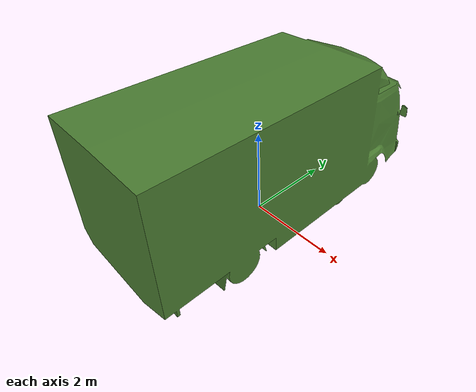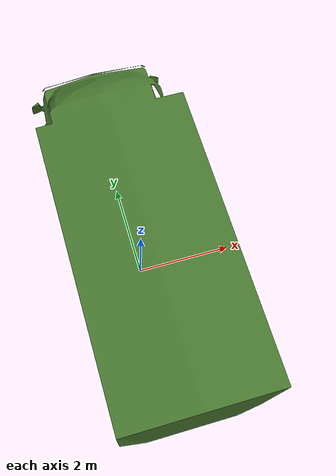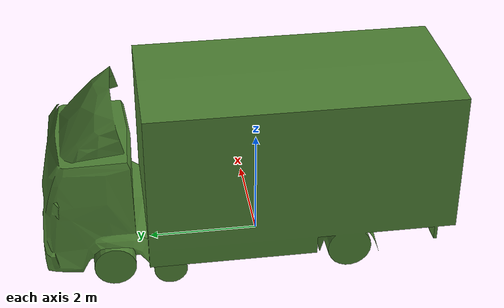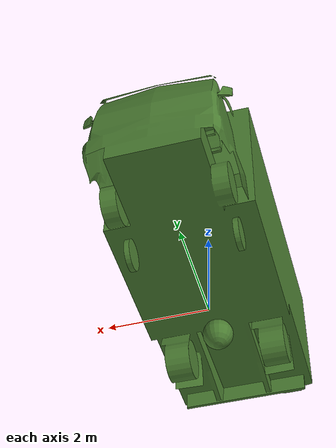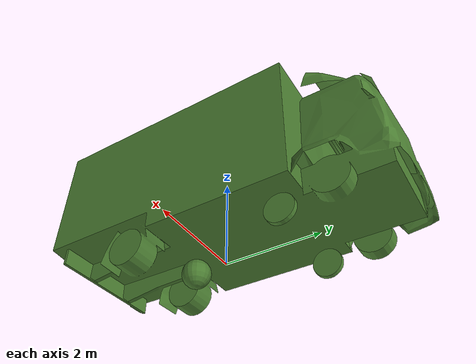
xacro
<?xml version="1.0"?>
<robot name="truck" xmlns:xacro="http://www.ros.org/wiki/xacro">

<xacro:include filename="$(find my_turtlebot_launch)/urdf/include/my_inertial.xacro"/>

  <xacro:property name="PI" value="3.14"/>

  <link name="base_footprint">
    <visual>
      <geometry>
        <sphere radius="0.01"/>
      </geometry>
    </visual>
  </link>

  <link name="base_link" >
    <visual>
    <geometry>
      <mesh filename="package://my_turtlebot_launch/urdf/mesh/truck.stl"/>
    </geometry>
    <origin xyz="-1.4 -3.5 0.1" rpy="${PI/2} 0 ${PI/2}"/>
      <material name="car_color">
        <color rgba="0.3 0.5 0.2 1"/>
      </material>
    </visual>
    <collision>
    <geometry>
      <mesh filename="package://my_turtlebot_launch/urdf/mesh/truck.stl"/>
    </geometry>
    <origin xyz="-1.4 -3.5 0.1" rpy="${PI/2} 0 ${PI/2}"/>
    </collision>
    <inertial>
      <mass value="10"/>
      <inertia ixx="1" ixy="0.0" ixz="0.0" iyy="1" iyz="0.0" izz="1" />
    </inertial>
  </link>

  <link name="left_wheel" >
    <visual>
    <geometry>
      <cylinder length="0.1" radius="0.3"/>
    </geometry>
    <origin xyz="0 0 0" rpy="${PI/2} ${PI/2} 0"/>
      <material name="car_color">
        <color rgba="0.3 0.5 0.2 0"/>
      </material>
    </visual>
    <xacro:cylinder_inertial_matrix m="20" r="0.3" h="0.1" />
    <collision>
    <geometry>
      <cylinder length="0.1" radius="0.3"/>
    </geometry>
    <origin xyz="0 0 0" rpy="${PI/2} ${PI/2} 0"/>
    </collision>
  </link>

    <link name="right_wheel" >
    <visual>
    <geometry>
      <cylinder length="0.1" radius="0.3"/>
    </geometry>
    <origin xyz="0 0 0" rpy="${PI/2} ${PI/2} 0"/>
      <material name="car_color">
        <color rgba="0.3 0.5 0.2 0"/>
      </material>
    </visual>
    <xacro:cylinder_inertial_matrix m="20" r="0.3" h="0." />
    <collision>
    <geometry>
      <cylinder length="0.1" radius="0.3"/>
    </geometry>
    <origin xyz="0 0 0" rpy="${PI/2} ${PI/2} 0"/>
    </collision>
  </link>

    <link name="support_wheel" >
    <visual>
    <geometry>
      <sphere radius="0.3" />
    </geometry>
    <origin xyz="0 0 0" rpy="0 0 0"/>
      <material name="car_color">
        <color rgba="0.3 0.5 0.2 0"/>
      </material>
    </visual>
    <xacro:sphere_inertial_matrix m="10" r="0.2" />
    <collision>
      <geometry>
        <sphere radius="0.3" />
      </geometry>
      <origin xyz="0 0 0" rpy="0 0 0"/>
    </collision>
  </link>

  <joint name="footprint2_base" type="fixed">
      <parent link="base_footprint"/>
      <child link="base_link"/>
      <origin xyz="0 0 -0.25" rpy="0 0 0"/>
  </joint>

  <joint name="link2_lwheel" type="continuous">
    <parent link="base_footprint"/>
    <child link="left_wheel"/>
    <origin xyz="-1.0 1.7 0" rpy="0 0 ${PI/2}"/>
    <axis xyz="0 1 0"/>
  </joint>

  <joint name="link2_rwheel" type="continuous">
    <parent link="base_footprint"/>
    <child link="right_wheel"/>
    <origin xyz="1.0 1.7 0" rpy="0 0 ${PI/2}"/>
    <axis xyz="0 1 0"/>
  </joint>

  <joint name="link2_swheel" type="continuous">
    <parent link="base_footprint"/>
    <child link="support_wheel"/>
    <origin xyz=" 0 -0.7 0" rpy="0 0 0"/>
    <axis xyz="1 1 1"/>
  </joint>

  <gazebo reference="base_link">
      <material>Gazebo/White</material>
  </gazebo>
    <gazebo reference="left_wheel">
      <material>Gazebo/White</material>
      <mu1>10</mu1>
      <mu2>10</mu2>
      <kp>10000000</kp>
      <kd>1</kd>
      <minDepth>0.001</minDepth>
  </gazebo>
    <gazebo reference="right_wheel">
      <material>Gazebo/White</material>
      <mu1>10</mu1>
      <mu2>10</mu2>
      <kp>10000000</kp>
      <kd>1</kd>
      <minDepth>0.001</minDepth>
  </gazebo>
  <gazebo reference="support_wheel">
      <material>Gazebo/White</material>
      <mu1>10</mu1>
      <mu2>10</mu2>
      <minDepth>0.001</minDepth>
  </gazebo>

  <gazebo>
    <plugin name="differential_drive_controller"
            filename="libgazebo_ros_diff_drive.so">
      <rosDebugLevel>Error</rosDebugLevel>
      <publishWheelTF>false</publishWheelTF>
      <robotNamespace>/</robotNamespace>
      <publishTf>true</publishTf>
      <publishOdomTF>true</publishOdomTF>
      <publishWheelJointState>false</publishWheelJointState>
      <updateRate>50</updateRate>
      <legacyMode>false</legacyMode>
      <leftJoint>link2_lwheel</leftJoint>
      <rightJoint>link2_rwheel</rightJoint>
      <wheelSeparation>2</wheelSeparation>
      <wheelDiameter>0.6</wheelDiameter>
      <broadcastTF>1</broadcastTF>
      <wheelTorque>10000</wheelTorque>
      <wheelAcceleration>10.0</wheelAcceleration>
      <commandTopic>cmd_vel</commandTopic>
      <odometryFrame>odom</odometryFrame>
      <odometryTopic>odom</odometryTopic>
      <odometrySource>world</odometrySource>
      <robotBaseFrame>base_footprint</robotBaseFrame>
    </plugin>
  </gazebo>

</robot>

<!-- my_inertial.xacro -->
<robot name="base" xmlns:xacro="http://wiki.ros.org/xacro">

    <xacro:macro name="sphere_inertial_matrix" params="m r">
        <inertial>
            <mass value="${m}" />
            <inertia ixx="${2*m*r*r/5}" ixy="0" ixz="0"
                iyy="${2*m*r*r/5}" iyz="0"
                izz="${2*m*r*r/5}" />
        </inertial>
    </xacro:macro>

    <xacro:macro name="cylinder_inertial_matrix" params="m r h">
        <inertial>
            <mass value="${m}" />
            <inertia ixx="${m*(3*r*r+h*h)/12}" ixy = "0" ixz = "0"
                iyy="${m*(3*r*r+h*h)/12}" iyz = "0"
                izz="${m*r*r/2}" />
        </inertial>
    </xacro:macro>

    <xacro:macro name="box_inertial_matrix" params="m l w h">
       <inertial>
               <mass value="${m}" />
               <inertia ixx="${m*(h*h + l*l)/12}" ixy = "0" ixz = "0"
                   iyy="${m*(w*w + l*l)/12}" iyz= "0"
                   izz="${m*(w*w + h*h)/12}" />
       </inertial>
   </xacro:macro>
</robot>
